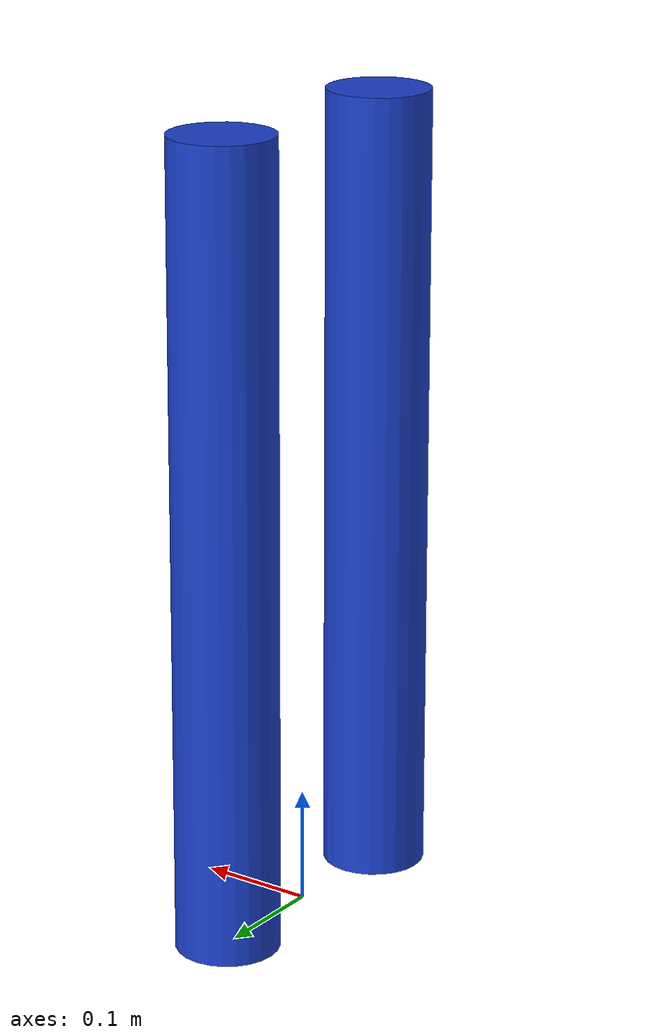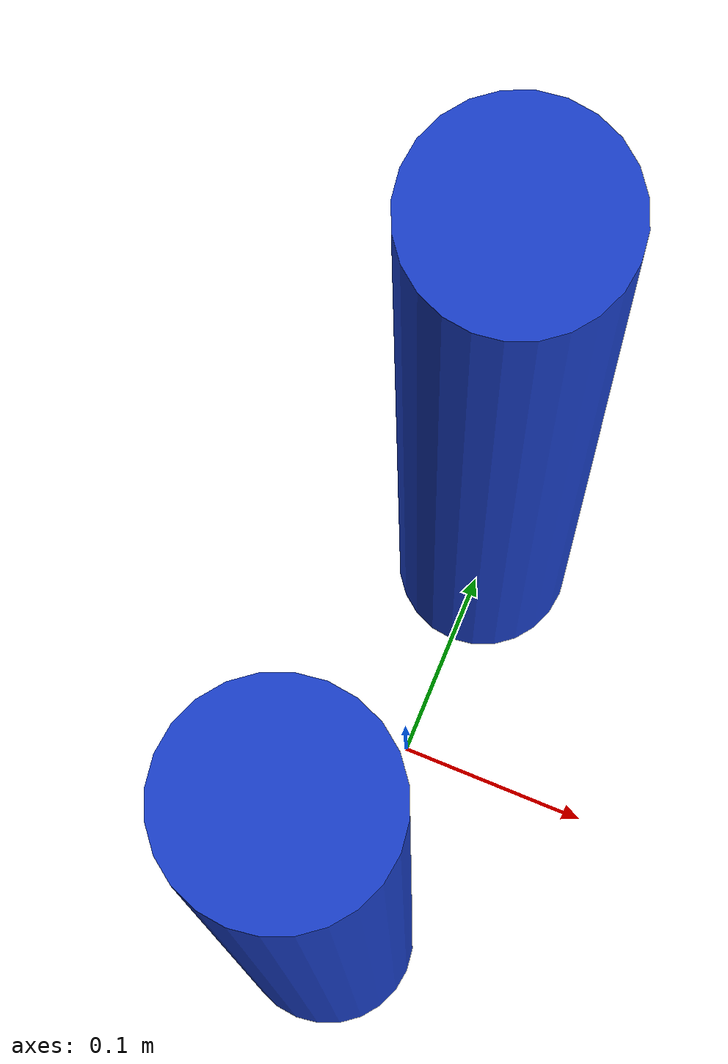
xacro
<?xml version="1.0"?>
<robot name="leg_pair" xmlns:xacro="http://ros.org/wiki/xacro">
  <xacro:arg name="leg_radius" default="0.045"/>
  <xacro:arg name="leg_height" default="0.7"/>
  <xacro:arg name="leg_separation" default="0.22"/>

  <xacro:property name="leg_radius" value="$(arg leg_radius)"/>
  <xacro:property name="leg_height" value="$(arg leg_height)"/>
  <xacro:property name="leg_separation" value="$(arg leg_separation)"/>
  <xacro:property name="leg_mass" value="1.0"/>

  <xacro:macro name="leg_inertia" params="mass radius height">
    <inertial>
      <origin xyz="0 0 ${height / 2.0}" rpy="0 0 0"/>
      <mass value="${mass}"/>
      <inertia
        ixx="${mass * (3.0 * radius * radius + height * height) / 12.0}"
        ixy="0.0"
        ixz="0.0"
        iyy="${mass * (3.0 * radius * radius + height * height) / 12.0}"
        iyz="0.0"
        izz="${mass * radius * radius / 2.0}"/>
    </inertial>
  </xacro:macro>

  <link name="leg_pair_base">
    <inertial>
      <mass value="0.01"/>
      <inertia ixx="0.0001" ixy="0.0" ixz="0.0" iyy="0.0001" iyz="0.0" izz="0.0001"/>
    </inertial>
  </link>

  <joint name="left_leg_joint" type="fixed">
    <origin xyz="0 ${leg_separation / 2.0} 0" rpy="0 0 0"/>
    <parent link="leg_pair_base"/>
    <child link="left_leg"/>
  </joint>

  <link name="left_leg">
    <xacro:leg_inertia mass="${leg_mass}" radius="${leg_radius}" height="${leg_height}"/>
    <visual>
      <origin xyz="0 0 ${leg_height / 2.0}" rpy="0 0 0"/>
      <geometry>
        <cylinder length="${leg_height}" radius="${leg_radius}"/>
      </geometry>
      <material name="leg_blue">
        <color rgba="0.1 0.25 0.8 1.0"/>
      </material>
    </visual>
    <collision>
      <origin xyz="0 0 ${leg_height / 2.0}" rpy="0 0 0"/>
      <geometry>
        <cylinder length="${leg_height}" radius="${leg_radius}"/>
      </geometry>
    </collision>
  </link>

  <joint name="right_leg_joint" type="fixed">
    <origin xyz="0 -${leg_separation / 2.0} 0" rpy="0 0 0"/>
    <parent link="leg_pair_base"/>
    <child link="right_leg"/>
  </joint>

  <link name="right_leg">
    <xacro:leg_inertia mass="${leg_mass}" radius="${leg_radius}" height="${leg_height}"/>
    <visual>
      <origin xyz="0 0 ${leg_height / 2.0}" rpy="0 0 0"/>
      <geometry>
        <cylinder length="${leg_height}" radius="${leg_radius}"/>
      </geometry>
      <material name="leg_blue">
        <color rgba="0.1 0.25 0.8 1.0"/>
      </material>
    </visual>
    <collision>
      <origin xyz="0 0 ${leg_height / 2.0}" rpy="0 0 0"/>
      <geometry>
        <cylinder length="${leg_height}" radius="${leg_radius}"/>
      </geometry>
    </collision>
  </link>

  <gazebo reference="left_leg">
    <material>Gazebo/Blue</material>
  </gazebo>

  <gazebo reference="right_leg">
    <material>Gazebo/Blue</material>
  </gazebo>
</robot>
